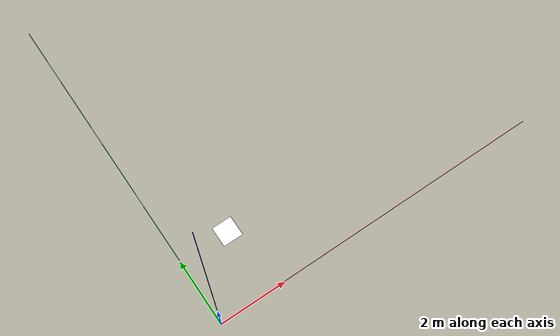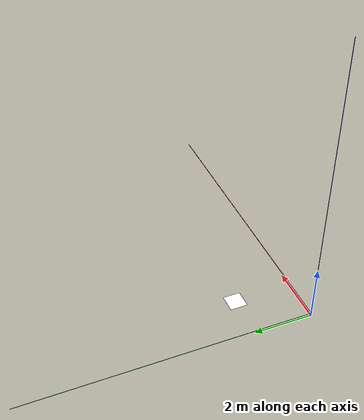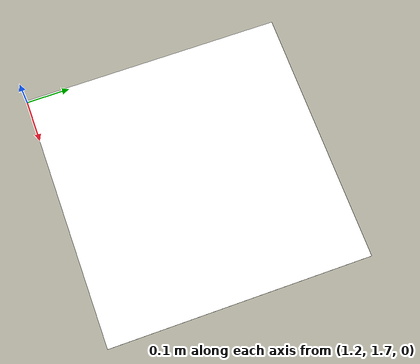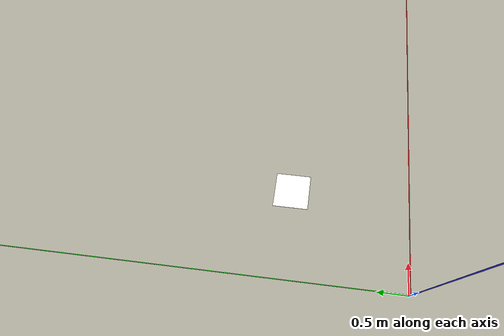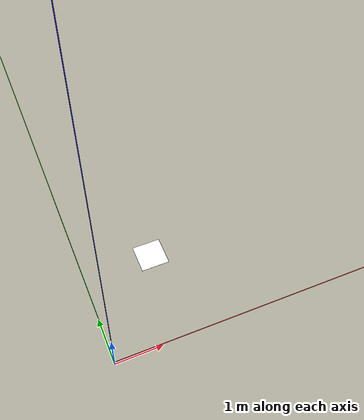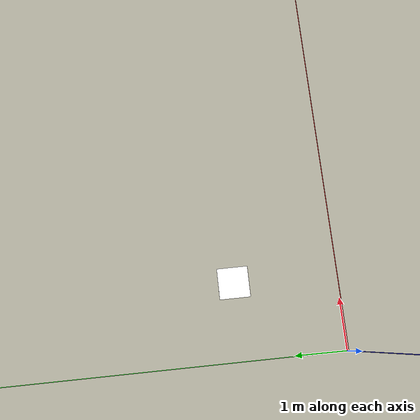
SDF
<sdf version="1.9">
 <world name="nova_marker">
  <physics name="1ms" type="ignore">
   <max_step_size>0.001</max_step_size>
   <real_time_factor>1.0</real_time_factor>
  </physics>
  <plugin filename="gz-sim-physics-system" name="gz::sim::systems::Physics"/>
  <plugin filename="gz-sim-sensors-system" name="gz::sim::systems::Sensors">
   <render_engine>ogre2</render_engine>
  </plugin>
  <plugin filename="gz-sim-user-commands-system" name="gz::sim::systems::UserCommands"/>
  <plugin filename="gz-sim-scene-broadcaster-system" name="gz::sim::systems::SceneBroadcaster"/>
  <plugin filename="gz-sim-imu-system" name="gz::sim::systems::Imu"/>
  <plugin filename="gz-sim-navsat-system" name="gz::sim::systems::NavSat"/>
  <scene><ambient>1.0 1.0 1.0</ambient><background>0.8 0.8 0.8</background></scene>
  <spherical_coordinates>
   <latitude_deg>-35.363262</latitude_deg>
   <longitude_deg>149.165237</longitude_deg>
   <elevation>584</elevation>
   <heading_deg>0</heading_deg>
   <surface_model>EARTH_WGS84</surface_model>
  </spherical_coordinates>
  <light type="directional" name="sun">
   <pose>0 0 10 0 0 0</pose>
   <diffuse>0.8 0.8 0.8 1</diffuse>
   <specular>0.8 0.8 0.8 1</specular>
   <attenuation>
    <range>1000</range>
    <constant>0.9</constant>
    <linear>0.01</linear>
    <quadratic>0.001</quadratic>
   </attenuation>
   <direction>-0.500000 0.500000 -0.707107</direction>
  </light>
  <model name="axes">
   <static>1</static>
   <link name="link">
    <visual name="r">
     <cast_shadows>0</cast_shadows>
     <pose>5 0 0.1 0 0 0</pose>
     <geometry><box><size>10 0.01 0.01</size></box></geometry>
     <material>
      <ambient>1 0 0 0.8</ambient>
      <diffuse>1 0 0 0.8</diffuse>
      <emissive>1 0 0 0.8</emissive>
      <specular>0.5 0.5 0.5 0.8</specular>
     </material>
    </visual>
    <visual name="g">
     <cast_shadows>0</cast_shadows>
     <pose>0 5 0.1 0 0 0</pose>
     <geometry><box><size>0.01 10 0.01</size></box></geometry>
     <material>
      <ambient>0 1 0 0.8</ambient>
      <diffuse>0 1 0 0.8</diffuse>
      <emissive>0 1 0 0.8</emissive>
      <specular>0.5 0.5 0.5 0.8</specular>
     </material>
    </visual>
    <visual name="b">
     <cast_shadows>0</cast_shadows>
     <pose>0 0 5.1 0 0 0</pose>
     <geometry><box><size>0.01 0.01 10</size></box></geometry>
     <material>
      <ambient>0 0 1 0.8</ambient>
      <diffuse>0 0 1 0.8</diffuse>
      <emissive>0 0 1 0.8</emissive>
      <specular>0.5 0.5 0.5 0.8</specular>
     </material>
    </visual>
    <sensor name="navsat_sensor" type="navsat"><always_on>1</always_on><update_rate>1</update_rate></sensor>
   </link>
  </model>
  <include>
   <uri>/home/fireteanualex/nova-zdc/sim/models/aruco_26</uri>
   <name>aruco_26</name>
   <pose>1.5 2 0.01 0 0 0</pose>
  </include>
 </world>
</sdf>

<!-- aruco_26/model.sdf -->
<!-- Generat de tools/make_marker_model.py. Nu edita de mana: regenereaza. -->
<sdf version="1.9">
  <model name="aruco_26">
    <static>true</static>
    <link name="link">
      <visual name="visual">
        <geometry>
          <plane>
            <normal>0 0 1</normal>
            <size>0.6 0.6</size>
          </plane>
        </geometry>
        <material>
          <diffuse>1 1 1 1</diffuse>
          <pbr>
            <metal>
              <albedo_map>materials/textures/aruco_26.png</albedo_map>
              <!-- 0.9 = hartie mata; 0.3 face markerul lucios si scoate la
                   iveala stralucirea semnalata de 15.4.7 -->
              <roughness>0.9</roughness>
              <metalness>0.0</metalness>
            </metal>
          </pbr>
        </material>
        <cast_shadows>false</cast_shadows>
      </visual>
    </link>
  </model>
</sdf>
